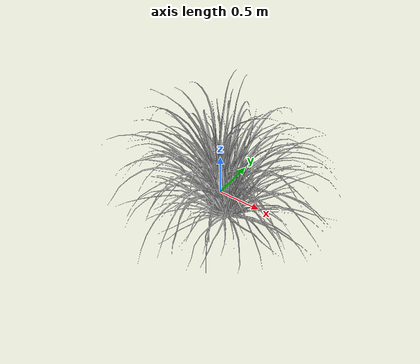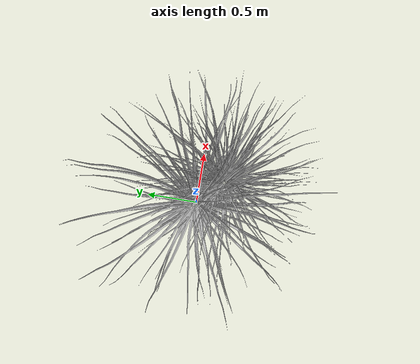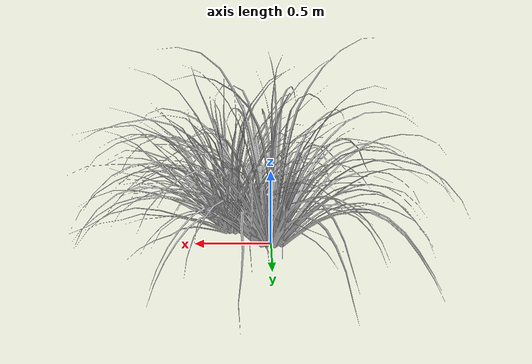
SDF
<?xml version="1.0" ?>
<sdf version="1.6">
  <model name="weed8">
    <static>1</static>
    <link name="weed8_1">

      <visual name="weed8_1">
        <geometry>
          <mesh>
            <uri>model://weed8/meshes/GC23_v1.obj</uri>
          </mesh>
        </geometry>
        <cast_shadows>1</cast_shadows>
      </visual>
        <pose>0 0 0 0 0 0</pose>
    </link>
    <link name="weed8_2">

      <visual name="weed8_2">
        <geometry>
          <mesh>
            <uri>model://weed8/meshes/GC23_v2.obj</uri>
          </mesh>
        </geometry>
        <cast_shadows>1</cast_shadows>
      </visual>
        <pose>0.25 -0.25 0 0 0 0</pose>
    </link>

  </model>

</sdf>
